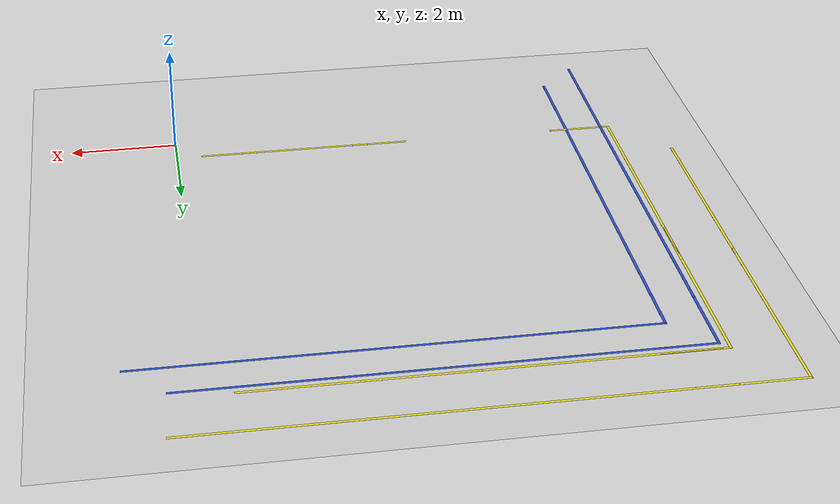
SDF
<sdf version="1.7">
 <world name="default">
  <model name="ground_plane">
   <static>1</static>
   <link name="link">
    <collision name="collision">
     <geometry><plane><normal>0 0 1</normal><size>100 100</size></plane></geometry>
     <surface>
      <contact><collide_bitmask>65535</collide_bitmask></contact>
      <friction><ode><mu>100</mu><mu2>50</mu2></ode></friction>
     </surface>
    </collision>
    <visual name="visual">
     <cast_shadows>0</cast_shadows>
     <geometry><plane><normal>0 0 1</normal><size>100 100</size></plane></geometry>
     <material>
      <script><uri>file://media/materials/scripts/gazebo.material</uri><name>Gazebo/Grey</name></script>
     </material>
    </visual>
   </link>
  </model>
  <model name="line9m_7">
   <link name="link_1">
    <inertial>
     <mass>1</mass>
     <inertia>
      <ixx>0.166667</ixx>
      <ixy>0</ixy>
      <ixz>0</ixz>
      <iyy>0.166667</iyy>
      <iyz>0</iyz>
      <izz>0.166667</izz>
     </inertia>
    </inertial>
    <visual name="visual">
     <geometry><box><size>9 0.05 0.001</size></box></geometry>
     <material>
      <lighting>1</lighting>
      <script><uri>file://media/materials/scripts/gazebo.material</uri><name>Gazebo/Yellow</name></script>
     </material>
    </visual>
    <collision name="collision">
     <geometry><box><size>9 0.05 0.001</size></box></geometry>
     <surface>
      <friction>
       <ode><mu>1</mu><mu2>1</mu2><fdir1>0 0 0</fdir1><slip1>0</slip1><slip2>0</slip2></ode>
       <torsional>
        <coefficient>1</coefficient>
        <patch_radius>0</patch_radius>
        <surface_radius>0</surface_radius>
        <use_patch_radius>1</use_patch_radius>
        <ode><slip>0</slip></ode>
       </torsional>
      </friction>
      <bounce><restitution_coefficient>0</restitution_coefficient><threshold>1e+06</threshold></bounce>
      <contact>
       <collide_without_contact>0</collide_without_contact>
       <collide_without_contact_bitmask>1</collide_without_contact_bitmask>
       <collide_bitmask>1</collide_bitmask>
       <ode>
        <soft_cfm>0</soft_cfm>
        <soft_erp>0.2</soft_erp>
        <kp>1e+13</kp>
        <kd>1</kd>
        <max_vel>0.01</max_vel>
        <min_depth>0</min_depth>
       </ode>
       <bullet>
        <split_impulse>1</split_impulse>
        <split_impulse_penetration_threshold>-0.01</split_impulse_penetration_threshold>
        <soft_cfm>0</soft_cfm>
        <soft_erp>0.2</soft_erp>
        <kp>1e+13</kp>
        <kd>1</kd>
       </bullet>
      </contact>
     </surface>
    </collision>
   </link>
   <static>1</static>
   <pose>-3.87 9.35 0 0 -0 0</pose>
  </model>
  <model name="line4m_0">
   <link name="link_3">
    <inertial>
     <mass>1</mass>
     <inertia>
      <ixx>0.166667</ixx>
      <ixy>0</ixy>
      <ixz>0</ixz>
      <iyy>0.166667</iyy>
      <iyz>0</iyz>
      <izz>0.166667</izz>
     </inertia>
    </inertial>
    <visual name="visual">
     <geometry><box><size>0.05 4 0.001</size></box></geometry>
     <material>
      <lighting>1</lighting>
      <script><uri>file://media/materials/scripts/gazebo.material</uri><name>Gazebo/Yellow</name></script>
     </material>
    </visual>
    <collision name="collision">
     <geometry><box><size>0.05 4 1e-06</size></box></geometry>
     <surface>
      <friction>
       <ode><mu>1</mu><mu2>1</mu2><fdir1>0 0 0</fdir1><slip1>0</slip1><slip2>0</slip2></ode>
       <torsional>
        <coefficient>1</coefficient>
        <patch_radius>0</patch_radius>
        <surface_radius>0</surface_radius>
        <use_patch_radius>1</use_patch_radius>
        <ode><slip>0</slip></ode>
       </torsional>
      </friction>
      <bounce><restitution_coefficient>0</restitution_coefficient><threshold>1e+06</threshold></bounce>
      <contact>
       <collide_without_contact>0</collide_without_contact>
       <collide_without_contact_bitmask>1</collide_without_contact_bitmask>
       <collide_bitmask>1</collide_bitmask>
       <ode>
        <soft_cfm>0</soft_cfm>
        <soft_erp>0.2</soft_erp>
        <kp>1e+13</kp>
        <kd>1</kd>
        <max_vel>0.01</max_vel>
        <min_depth>0</min_depth>
       </ode>
       <bullet>
        <split_impulse>1</split_impulse>
        <split_impulse_penetration_threshold>-0.01</split_impulse_penetration_threshold>
        <soft_cfm>0</soft_cfm>
        <soft_erp>0.2</soft_erp>
        <kp>1e+13</kp>
        <kd>1</kd>
       </bullet>
      </contact>
     </surface>
    </collision>
   </link>
   <static>1</static>
   <pose>-8.55 4.28851 0 0 -0 0</pose>
  </model>
  <model name="line4m_1">
   <link name="link_3">
    <inertial>
     <mass>1</mass>
     <inertia>
      <ixx>0.166667</ixx>
      <ixy>0</ixy>
      <ixz>0</ixz>
      <iyy>0.166667</iyy>
      <iyz>0</iyz>
      <izz>0.166667</izz>
     </inertia>
    </inertial>
    <visual name="visual">
     <geometry><box><size>0.05 4 0.001</size></box></geometry>
     <material>
      <lighting>1</lighting>
      <script><uri>file://media/materials/scripts/gazebo.material</uri><name>Gazebo/Yellow</name></script>
     </material>
    </visual>
    <collision name="collision">
     <geometry><box><size>0.05 4 1e-06</size></box></geometry>
     <surface>
      <friction>
       <ode><mu>1</mu><mu2>1</mu2><fdir1>0 0 0</fdir1><slip1>0</slip1><slip2>0</slip2></ode>
       <torsional>
        <coefficient>1</coefficient>
        <patch_radius>0</patch_radius>
        <surface_radius>0</surface_radius>
        <use_patch_radius>1</use_patch_radius>
        <ode><slip>0</slip></ode>
       </torsional>
      </friction>
      <bounce><restitution_coefficient>0</restitution_coefficient><threshold>1e+06</threshold></bounce>
      <contact>
       <collide_without_contact>0</collide_without_contact>
       <collide_without_contact_bitmask>1</collide_without_contact_bitmask>
       <collide_bitmask>1</collide_bitmask>
       <ode>
        <soft_cfm>0</soft_cfm>
        <soft_erp>0.2</soft_erp>
        <kp>1e+13</kp>
        <kd>1</kd>
        <max_vel>0.01</max_vel>
        <min_depth>0</min_depth>
       </ode>
       <bullet>
        <split_impulse>1</split_impulse>
        <split_impulse_penetration_threshold>-0.01</split_impulse_penetration_threshold>
        <soft_cfm>0</soft_cfm>
        <soft_erp>0.2</soft_erp>
        <kp>1e+13</kp>
        <kd>1</kd>
       </bullet>
      </contact>
     </surface>
    </collision>
   </link>
   <static>1</static>
   <pose>-9.55 3.56802 0 0 -0 0</pose>
  </model>
  <model name="line4m_2">
   <link name="link_3">
    <inertial>
     <mass>1</mass>
     <inertia>
      <ixx>0.166667</ixx>
      <ixy>0</ixy>
      <ixz>0</ixz>
      <iyy>0.166667</iyy>
      <iyz>0</iyz>
      <izz>0.166667</izz>
     </inertia>
    </inertial>
    <visual name="visual">
     <geometry><box><size>0.05 4 0.001</size></box></geometry>
     <material>
      <lighting>1</lighting>
      <script><uri>file://media/materials/scripts/gazebo.material</uri><name>Gazebo/Yellow</name></script>
     </material>
    </visual>
    <collision name="collision">
     <geometry><box><size>0.05 4 1e-06</size></box></geometry>
     <surface>
      <friction>
       <ode><mu>1</mu><mu2>1</mu2><fdir1>0 0 0</fdir1><slip1>0</slip1><slip2>0</slip2></ode>
       <torsional>
        <coefficient>1</coefficient>
        <patch_radius>0</patch_radius>
        <surface_radius>0</surface_radius>
        <use_patch_radius>1</use_patch_radius>
        <ode><slip>0</slip></ode>
       </torsional>
      </friction>
      <bounce><restitution_coefficient>0</restitution_coefficient><threshold>1e+06</threshold></bounce>
      <contact>
       <collide_without_contact>0</collide_without_contact>
       <collide_without_contact_bitmask>1</collide_without_contact_bitmask>
       <collide_bitmask>1</collide_bitmask>
       <ode>
        <soft_cfm>0</soft_cfm>
        <soft_erp>0.2</soft_erp>
        <kp>1e+13</kp>
        <kd>1</kd>
        <max_vel>0.01</max_vel>
        <min_depth>0</min_depth>
       </ode>
       <bullet>
        <split_impulse>1</split_impulse>
        <split_impulse_penetration_threshold>-0.01</split_impulse_penetration_threshold>
        <soft_cfm>0</soft_cfm>
        <soft_erp>0.2</soft_erp>
        <kp>1e+13</kp>
        <kd>1</kd>
       </bullet>
      </contact>
     </surface>
    </collision>
   </link>
   <static>1</static>
   <pose>-9.55 7.37 0 0 -0 0</pose>
  </model>
  <model name="line4m_3">
   <link name="link_3">
    <inertial>
     <mass>1</mass>
     <inertia>
      <ixx>0.166667</ixx>
      <ixy>0</ixy>
      <ixz>0</ixz>
      <iyy>0.166667</iyy>
      <iyz>0</iyz>
      <izz>0.166667</izz>
     </inertia>
    </inertial>
    <visual name="visual">
     <geometry><box><size>0.05 4 0.001</size></box></geometry>
     <material>
      <lighting>1</lighting>
      <script><uri>file://media/materials/scripts/gazebo.material</uri><name>Gazebo/Yellow</name></script>
     </material>
    </visual>
    <collision name="collision">
     <geometry><box><size>0.05 4 1e-06</size></box></geometry>
     <surface>
      <friction>
       <ode><mu>1</mu><mu2>1</mu2><fdir1>0 0 0</fdir1><slip1>0</slip1><slip2>0</slip2></ode>
       <torsional>
        <coefficient>1</coefficient>
        <patch_radius>0</patch_radius>
        <surface_radius>0</surface_radius>
        <use_patch_radius>1</use_patch_radius>
        <ode><slip>0</slip></ode>
       </torsional>
      </friction>
      <bounce><restitution_coefficient>0</restitution_coefficient><threshold>1e+06</threshold></bounce>
      <contact>
       <collide_without_contact>0</collide_without_contact>
       <collide_without_contact_bitmask>1</collide_without_contact_bitmask>
       <collide_bitmask>1</collide_bitmask>
       <ode>
        <soft_cfm>0</soft_cfm>
        <soft_erp>0.2</soft_erp>
        <kp>1e+13</kp>
        <kd>1</kd>
        <max_vel>0.01</max_vel>
        <min_depth>0</min_depth>
       </ode>
       <bullet>
        <split_impulse>1</split_impulse>
        <split_impulse_penetration_threshold>-0.01</split_impulse_penetration_threshold>
        <soft_cfm>0</soft_cfm>
        <soft_erp>0.2</soft_erp>
        <kp>1e+13</kp>
        <kd>1</kd>
       </bullet>
      </contact>
     </surface>
    </collision>
   </link>
   <static>1</static>
   <pose>-8.55 6.375 0 0 -0 0</pose>
  </model>
  <model name="line2m_0">
   <link name="link_0">
    <inertial>
     <mass>1</mass>
     <inertia>
      <ixx>0.166667</ixx>
      <ixy>0</ixy>
      <ixz>0</ixz>
      <iyy>0.166667</iyy>
      <iyz>0</iyz>
      <izz>0.166667</izz>
     </inertia>
    </inertial>
    <visual name="visual">
     <geometry><box><size>2 0.05 0.001</size></box></geometry>
     <material>
      <lighting>1</lighting>
      <script><uri>file://media/materials/scripts/gazebo.material</uri><name>Gazebo/Yellow</name></script>
     </material>
    </visual>
    <collision name="collision">
     <geometry><box><size>2 0.05 1e-05</size></box></geometry>
     <surface>
      <friction>
       <ode><mu>1</mu><mu2>1</mu2><fdir1>0 0 0</fdir1><slip1>0</slip1><slip2>0</slip2></ode>
       <torsional>
        <coefficient>1</coefficient>
        <patch_radius>0</patch_radius>
        <surface_radius>0</surface_radius>
        <use_patch_radius>1</use_patch_radius>
        <ode><slip>0</slip></ode>
       </torsional>
      </friction>
      <bounce><restitution_coefficient>0</restitution_coefficient><threshold>1e+06</threshold></bounce>
      <contact>
       <collide_without_contact>0</collide_without_contact>
       <collide_without_contact_bitmask>1</collide_without_contact_bitmask>
       <collide_bitmask>1</collide_bitmask>
       <ode>
        <soft_cfm>0</soft_cfm>
        <soft_erp>0.2</soft_erp>
        <kp>1e+13</kp>
        <kd>1</kd>
        <max_vel>0.01</max_vel>
        <min_depth>0</min_depth>
       </ode>
       <bullet>
        <split_impulse>1</split_impulse>
        <split_impulse_penetration_threshold>-0.01</split_impulse_penetration_threshold>
        <soft_cfm>0</soft_cfm>
        <soft_erp>0.2</soft_erp>
        <kp>1e+13</kp>
        <kd>1</kd>
       </bullet>
      </contact>
     </surface>
    </collision>
   </link>
   <static>1</static>
   <pose>-8.575 9.35 0 0 -0 0</pose>
  </model>
  <model name="line9m_11_clone">
   <link name="link_1">
    <inertial>
     <mass>1</mass>
     <inertia>
      <ixx>0.166667</ixx>
      <ixy>0</ixy>
      <ixz>0</ixz>
      <iyy>0.166667</iyy>
      <iyz>0</iyz>
      <izz>0.166667</izz>
     </inertia>
    </inertial>
    <visual name="visual">
     <geometry><box><size>9 0.05 0.001</size></box></geometry>
     <material>
      <lighting>1</lighting>
      <script><uri>file://media/materials/scripts/gazebo.material</uri><name>Gazebo/Blue</name></script>
     </material>
    </visual>
    <collision name="collision">
     <geometry><box><size>9 0.05 0.001</size></box></geometry>
     <surface>
      <friction>
       <ode><mu>1</mu><mu2>1</mu2><fdir1>0 0 0</fdir1><slip1>0</slip1><slip2>0</slip2></ode>
       <torsional>
        <coefficient>1</coefficient>
        <patch_radius>0</patch_radius>
        <surface_radius>0</surface_radius>
        <use_patch_radius>1</use_patch_radius>
        <ode><slip>0</slip></ode>
       </torsional>
      </friction>
      <bounce><restitution_coefficient>0</restitution_coefficient><threshold>1e+06</threshold></bounce>
      <contact>
       <collide_without_contact>0</collide_without_contact>
       <collide_without_contact_bitmask>1</collide_without_contact_bitmask>
       <collide_bitmask>1</collide_bitmask>
       <ode>
        <soft_cfm>0</soft_cfm>
        <soft_erp>0.2</soft_erp>
        <kp>1e+13</kp>
        <kd>1</kd>
        <max_vel>0.01</max_vel>
        <min_depth>0</min_depth>
       </ode>
       <bullet>
        <split_impulse>1</split_impulse>
        <split_impulse_penetration_threshold>-0.01</split_impulse_penetration_threshold>
        <soft_cfm>0</soft_cfm>
        <soft_erp>0.2</soft_erp>
        <kp>1e+13</kp>
        <kd>1</kd>
       </bullet>
      </contact>
     </surface>
    </collision>
   </link>
   <static>1</static>
   <pose>-3.92317 8.2 0 0 -0 0</pose>
  </model>
  <model name="line160cm">
   <link name="link_1">
    <inertial>
     <mass>1</mass>
     <inertia>
      <ixx>0.166667</ixx>
      <ixy>0</ixy>
      <ixz>0</ixz>
      <iyy>0.166667</iyy>
      <iyz>0</iyz>
      <izz>0.166667</izz>
     </inertia>
    </inertial>
    <visual name="visual">
     <geometry><box><size>1.6 0.05 0.001</size></box></geometry>
     <material>
      <script><uri>file://media/materials/scripts/gazebo.material</uri><name>Gazebo/Blue</name></script>
     </material>
    </visual>
    <collision name="collision">
     <geometry><box><size>1.6 0.05 1e-05</size></box></geometry>
     <surface>
      <friction>
       <ode><mu>1</mu><mu2>1</mu2><fdir1>0 0 0</fdir1><slip1>0</slip1><slip2>0</slip2></ode>
       <torsional>
        <coefficient>1</coefficient>
        <patch_radius>0</patch_radius>
        <surface_radius>0</surface_radius>
        <use_patch_radius>1</use_patch_radius>
        <ode><slip>0</slip></ode>
       </torsional>
      </friction>
      <bounce><restitution_coefficient>0</restitution_coefficient><threshold>1e+06</threshold></bounce>
      <contact>
       <collide_without_contact>0</collide_without_contact>
       <collide_without_contact_bitmask>1</collide_without_contact_bitmask>
       <collide_bitmask>1</collide_bitmask>
       <ode>
        <soft_cfm>0</soft_cfm>
        <soft_erp>0.2</soft_erp>
        <kp>1e+13</kp>
        <kd>1</kd>
        <max_vel>0.01</max_vel>
        <min_depth>0</min_depth>
       </ode>
       <bullet>
        <split_impulse>1</split_impulse>
        <split_impulse_penetration_threshold>-0.01</split_impulse_penetration_threshold>
        <soft_cfm>0</soft_cfm>
        <soft_erp>0.2</soft_erp>
        <kp>1e+13</kp>
        <kd>1</kd>
       </bullet>
      </contact>
     </surface>
    </collision>
   </link>
   <static>1</static>
   <pose>-8.4 7.4248 0 0 -0 1.571</pose>
  </model>
  <model name="line9m_12">
   <link name="link_1">
    <inertial>
     <mass>1</mass>
     <inertia>
      <ixx>0.166667</ixx>
      <ixy>0</ixy>
      <ixz>0</ixz>
      <iyy>0.166667</iyy>
      <iyz>0</iyz>
      <izz>0.166667</izz>
     </inertia>
    </inertial>
    <visual name="visual">
     <geometry><box><size>9 0.05 0.001</size></box></geometry>
     <material>
      <lighting>1</lighting>
      <script><uri>file://media/materials/scripts/gazebo.material</uri><name>Gazebo/Blue</name></script>
     </material>
    </visual>
    <collision name="collision">
     <geometry><box><size>9 0.05 0.001</size></box></geometry>
     <surface>
      <friction>
       <ode><mu>1</mu><mu2>1</mu2><fdir1>0 0 0</fdir1><slip1>0</slip1><slip2>0</slip2></ode>
       <torsional>
        <coefficient>1</coefficient>
        <patch_radius>0</patch_radius>
        <surface_radius>0</surface_radius>
        <use_patch_radius>1</use_patch_radius>
        <ode><slip>0</slip></ode>
       </torsional>
      </friction>
      <bounce><restitution_coefficient>0</restitution_coefficient><threshold>1e+06</threshold></bounce>
      <contact>
       <collide_without_contact>0</collide_without_contact>
       <collide_without_contact_bitmask>1</collide_without_contact_bitmask>
       <collide_bitmask>1</collide_bitmask>
       <ode>
        <soft_cfm>0</soft_cfm>
        <soft_erp>0.2</soft_erp>
        <kp>1e+13</kp>
        <kd>1</kd>
        <max_vel>0.01</max_vel>
        <min_depth>0</min_depth>
       </ode>
       <bullet>
        <split_impulse>1</split_impulse>
        <split_impulse_penetration_threshold>-0.01</split_impulse_penetration_threshold>
        <soft_cfm>0</soft_cfm>
        <soft_erp>0.2</soft_erp>
        <kp>1e+13</kp>
        <kd>1</kd>
       </bullet>
      </contact>
     </surface>
    </collision>
   </link>
   <static>1</static>
   <pose>-3.2268 7.5 0 0 -0 0</pose>
  </model>
  <model name="line9m_13">
   <link name="link_1">
    <inertial>
     <mass>1</mass>
     <inertia>
      <ixx>0.166667</ixx>
      <ixy>0</ixy>
      <ixz>0</ixz>
      <iyy>0.166667</iyy>
      <iyz>0</iyz>
      <izz>0.166667</izz>
     </inertia>
    </inertial>
    <visual name="visual">
     <geometry><box><size>9 0.05 0.001</size></box></geometry>
     <material>
      <lighting>1</lighting>
      <script><uri>file://media/materials/scripts/gazebo.material</uri><name>Gazebo/Blue</name></script>
     </material>
    </visual>
    <collision name="collision">
     <geometry><box><size>9 0.05 0.001</size></box></geometry>
     <surface>
      <friction>
       <ode><mu>1</mu><mu2>1</mu2><fdir1>0 0 0</fdir1><slip1>0</slip1><slip2>0</slip2></ode>
       <torsional>
        <coefficient>1</coefficient>
        <patch_radius>0</patch_radius>
        <surface_radius>0</surface_radius>
        <use_patch_radius>1</use_patch_radius>
        <ode><slip>0</slip></ode>
       </torsional>
      </friction>
      <bounce><restitution_coefficient>0</restitution_coefficient><threshold>1e+06</threshold></bounce>
      <contact>
       <collide_without_contact>0</collide_without_contact>
       <collide_without_contact_bitmask>1</collide_without_contact_bitmask>
       <collide_bitmask>1</collide_bitmask>
       <ode>
        <soft_cfm>0</soft_cfm>
        <soft_erp>0.2</soft_erp>
        <kp>1e+13</kp>
        <kd>1</kd>
        <max_vel>0.01</max_vel>
        <min_depth>0</min_depth>
       </ode>
       <bullet>
        <split_impulse>1</split_impulse>
        <split_impulse_penetration_threshold>-0.01</split_impulse_penetration_threshold>
        <soft_cfm>0</soft_cfm>
        <soft_erp>0.2</soft_erp>
        <kp>1e+13</kp>
        <kd>1</kd>
       </bullet>
      </contact>
     </surface>
    </collision>
   </link>
   <static>1</static>
   <pose>-7.7 3.025 0 0 -0 1.571</pose>
  </model>
  <model name="line9m_15">
   <link name="link_1">
    <inertial>
     <mass>1</mass>
     <inertia>
      <ixx>0.166667</ixx>
      <ixy>0</ixy>
      <ixz>0</ixz>
      <iyy>0.166667</iyy>
      <iyz>0</iyz>
      <izz>0.166667</izz>
     </inertia>
    </inertial>
    <visual name="visual">
     <geometry><box><size>9 0.05 0.001</size></box></geometry>
     <material>
      <lighting>1</lighting>
      <script><uri>file://media/materials/scripts/gazebo.material</uri><name>Gazebo/Blue</name></script>
     </material>
    </visual>
    <collision name="collision">
     <geometry><box><size>9 0.05 0.001</size></box></geometry>
     <surface>
      <friction>
       <ode><mu>1</mu><mu2>1</mu2><fdir1>0 0 0</fdir1><slip1>0</slip1><slip2>0</slip2></ode>
       <torsional>
        <coefficient>1</coefficient>
        <patch_radius>0</patch_radius>
        <surface_radius>0</surface_radius>
        <use_patch_radius>1</use_patch_radius>
        <ode><slip>0</slip></ode>
       </torsional>
      </friction>
      <bounce><restitution_coefficient>0</restitution_coefficient><threshold>1e+06</threshold></bounce>
      <contact>
       <collide_without_contact>0</collide_without_contact>
       <collide_without_contact_bitmask>1</collide_without_contact_bitmask>
       <collide_bitmask>1</collide_bitmask>
       <ode>
        <soft_cfm>0</soft_cfm>
        <soft_erp>0.2</soft_erp>
        <kp>1e+13</kp>
        <kd>1</kd>
        <max_vel>0.01</max_vel>
        <min_depth>0</min_depth>
       </ode>
       <bullet>
        <split_impulse>1</split_impulse>
        <split_impulse_penetration_threshold>-0.01</split_impulse_penetration_threshold>
        <soft_cfm>0</soft_cfm>
        <soft_erp>0.2</soft_erp>
        <kp>1e+13</kp>
        <kd>1</kd>
       </bullet>
      </contact>
     </surface>
    </collision>
   </link>
   <static>1</static>
   <pose>-8.40007 2.31121 0 0 -0 1.571</pose>
  </model>
  <model name="line4m_26">
   <link name="link_3">
    <inertial>
     <mass>1</mass>
     <inertia>
      <ixx>0.166667</ixx>
      <ixy>0</ixy>
      <ixz>0</ixz>
      <iyy>0.166667</iyy>
      <iyz>0</iyz>
      <izz>0.166667</izz>
     </inertia>
    </inertial>
    <visual name="visual">
     <geometry><box><size>0.05 4 0.001</size></box></geometry>
     <material>
      <lighting>1</lighting>
      <script><uri>file://media/materials/scripts/gazebo.material</uri><name>Gazebo/Yellow</name></script>
     </material>
    </visual>
    <collision name="collision">
     <geometry><box><size>0.05 4 1e-06</size></box></geometry>
     <surface>
      <friction>
       <ode><mu>1</mu><mu2>1</mu2><fdir1>0 0 0</fdir1><slip1>0</slip1><slip2>0</slip2></ode>
       <torsional>
        <coefficient>1</coefficient>
        <patch_radius>0</patch_radius>
        <surface_radius>0</surface_radius>
        <use_patch_radius>1</use_patch_radius>
        <ode><slip>0</slip></ode>
       </torsional>
      </friction>
      <bounce><restitution_coefficient>0</restitution_coefficient><threshold>1e+06</threshold></bounce>
      <contact>
       <collide_without_contact>0</collide_without_contact>
       <collide_without_contact_bitmask>1</collide_without_contact_bitmask>
       <collide_bitmask>1</collide_bitmask>
       <ode>
        <soft_cfm>0</soft_cfm>
        <soft_erp>0.2</soft_erp>
        <kp>1e+13</kp>
        <kd>1</kd>
        <max_vel>0.01</max_vel>
        <min_depth>0</min_depth>
       </ode>
       <bullet>
        <split_impulse>1</split_impulse>
        <split_impulse_penetration_threshold>-0.01</split_impulse_penetration_threshold>
        <soft_cfm>0</soft_cfm>
        <soft_erp>0.2</soft_erp>
        <kp>1e+13</kp>
        <kd>1</kd>
       </bullet>
      </contact>
     </surface>
    </collision>
   </link>
   <static>1</static>
   <pose>-6.42122 8.34955 0 0 -0 1.571</pose>
  </model>
  <model name="line120cm_6">
   <link name="link_1">
    <inertial>
     <mass>1</mass>
     <inertia>
      <ixx>0.166667</ixx>
      <ixy>0</ixy>
      <ixz>0</ixz>
      <iyy>0.166667</iyy>
      <iyz>0</iyz>
      <izz>0.166667</izz>
     </inertia>
    </inertial>
    <visual name="visual">
     <geometry><box><size>1.2 0.05 0.001</size></box></geometry>
     <material>
      <script><uri>file://media/materials/scripts/gazebo.material</uri><name>Gazebo/Yellow</name></script>
     </material>
    </visual>
    <collision name="collision">
     <geometry><box><size>1.2 0.05 1e-05</size></box></geometry>
     <surface>
      <friction>
       <ode><mu>1</mu><mu2>1</mu2><fdir1>0 0 0</fdir1><slip1>0</slip1><slip2>0</slip2></ode>
       <torsional>
        <coefficient>1</coefficient>
        <patch_radius>0</patch_radius>
        <surface_radius>0</surface_radius>
        <use_patch_radius>1</use_patch_radius>
        <ode><slip>0</slip></ode>
       </torsional>
      </friction>
      <bounce><restitution_coefficient>0</restitution_coefficient><threshold>1e+06</threshold></bounce>
      <contact>
       <collide_without_contact>0</collide_without_contact>
       <collide_without_contact_bitmask>1</collide_without_contact_bitmask>
       <collide_bitmask>1</collide_bitmask>
       <ode>
        <soft_cfm>0</soft_cfm>
        <soft_erp>0.2</soft_erp>
        <kp>1e+13</kp>
        <kd>1</kd>
        <max_vel>0.01</max_vel>
        <min_depth>0</min_depth>
       </ode>
       <bullet>
        <split_impulse>1</split_impulse>
        <split_impulse_penetration_threshold>-0.01</split_impulse_penetration_threshold>
        <soft_cfm>0</soft_cfm>
        <soft_erp>0.2</soft_erp>
        <kp>1e+13</kp>
        <kd>1</kd>
       </bullet>
      </contact>
     </surface>
    </collision>
   </link>
   <static>1</static>
   <pose>-7.96761 8.35 0 0 -0 0</pose>
  </model>
  <model name="line4m_17_clone">
   <link name="link_3">
    <inertial>
     <mass>1</mass>
     <inertia>
      <ixx>0.166667</ixx>
      <ixy>0</ixy>
      <ixz>0</ixz>
      <iyy>0.166667</iyy>
      <iyz>0</iyz>
      <izz>0.166667</izz>
     </inertia>
    </inertial>
    <visual name="visual">
     <geometry><box><size>0.05 4 0.001</size></box></geometry>
     <material>
      <lighting>1</lighting>
      <script><uri>file://media/materials/scripts/gazebo.material</uri><name>Gazebo/Yellow</name></script>
     </material>
    </visual>
    <collision name="collision">
     <geometry><box><size>0.05 4 1e-06</size></box></geometry>
     <surface>
      <friction>
       <ode><mu>1</mu><mu2>1</mu2><fdir1>0 0 0</fdir1><slip1>0</slip1><slip2>0</slip2></ode>
       <torsional>
        <coefficient>1</coefficient>
        <patch_radius>0</patch_radius>
        <surface_radius>0</surface_radius>
        <use_patch_radius>1</use_patch_radius>
        <ode><slip>0</slip></ode>
       </torsional>
      </friction>
      <bounce><restitution_coefficient>0</restitution_coefficient><threshold>1e+06</threshold></bounce>
      <contact>
       <collide_without_contact>0</collide_without_contact>
       <collide_without_contact_bitmask>1</collide_without_contact_bitmask>
       <collide_bitmask>1</collide_bitmask>
       <ode>
        <soft_cfm>0</soft_cfm>
        <soft_erp>0.2</soft_erp>
        <kp>1e+13</kp>
        <kd>1</kd>
        <max_vel>0.01</max_vel>
        <min_depth>0</min_depth>
       </ode>
       <bullet>
        <split_impulse>1</split_impulse>
        <split_impulse_penetration_threshold>-0.01</split_impulse_penetration_threshold>
        <soft_cfm>0</soft_cfm>
        <soft_erp>0.2</soft_erp>
        <kp>1e+13</kp>
        <kd>1</kd>
       </bullet>
      </contact>
     </surface>
    </collision>
   </link>
   <static>1</static>
   <pose>-2.4726 0.5 0 0 -0 1.571</pose>
  </model>
  <model name="line120cm_13">
   <link name="link_1">
    <inertial>
     <mass>1</mass>
     <inertia>
      <ixx>0.166667</ixx>
      <ixy>0</ixy>
      <ixz>0</ixz>
      <iyy>0.166667</iyy>
      <iyz>0</iyz>
      <izz>0.166667</izz>
     </inertia>
    </inertial>
    <visual name="visual">
     <geometry><box><size>1.2 0.05 0.001</size></box></geometry>
     <material>
      <script><uri>file://media/materials/scripts/gazebo.material</uri><name>Gazebo/Yellow</name></script>
     </material>
    </visual>
    <collision name="collision">
     <geometry><box><size>1.2 0.05 1e-05</size></box></geometry>
     <surface>
      <friction>
       <ode><mu>1</mu><mu2>1</mu2><fdir1>0 0 0</fdir1><slip1>0</slip1><slip2>0</slip2></ode>
       <torsional>
        <coefficient>1</coefficient>
        <patch_radius>0</patch_radius>
        <surface_radius>0</surface_radius>
        <use_patch_radius>1</use_patch_radius>
        <ode><slip>0</slip></ode>
       </torsional>
      </friction>
      <bounce><restitution_coefficient>0</restitution_coefficient><threshold>1e+06</threshold></bounce>
      <contact>
       <collide_without_contact>0</collide_without_contact>
       <collide_without_contact_bitmask>1</collide_without_contact_bitmask>
       <collide_bitmask>1</collide_bitmask>
       <ode>
        <soft_cfm>0</soft_cfm>
        <soft_erp>0.2</soft_erp>
        <kp>1e+13</kp>
        <kd>1</kd>
        <max_vel>0.01</max_vel>
        <min_depth>0</min_depth>
       </ode>
       <bullet>
        <split_impulse>1</split_impulse>
        <split_impulse_penetration_threshold>-0.01</split_impulse_penetration_threshold>
        <soft_cfm>0</soft_cfm>
        <soft_erp>0.2</soft_erp>
        <kp>1e+13</kp>
        <kd>1</kd>
       </bullet>
      </contact>
     </surface>
    </collision>
   </link>
   <static>1</static>
   <pose>-7.97345 0.5 0 0 -0 0</pose>
  </model>
  <model name="line4m_33">
   <link name="link_3">
    <inertial>
     <mass>1</mass>
     <inertia>
      <ixx>0.166667</ixx>
      <ixy>0</ixy>
      <ixz>0</ixz>
      <iyy>0.166667</iyy>
      <iyz>0</iyz>
      <izz>0.166667</izz>
     </inertia>
    </inertial>
    <visual name="visual">
     <geometry><box><size>0.05 4 0.001</size></box></geometry>
     <material>
      <lighting>1</lighting>
      <script><uri>file://media/materials/scripts/gazebo.material</uri><name>Gazebo/Yellow</name></script>
     </material>
    </visual>
    <collision name="collision">
     <geometry><box><size>0.05 4 1e-06</size></box></geometry>
     <surface>
      <friction>
       <ode><mu>1</mu><mu2>1</mu2><fdir1>0 0 0</fdir1><slip1>0</slip1><slip2>0</slip2></ode>
       <torsional>
        <coefficient>1</coefficient>
        <patch_radius>0</patch_radius>
        <surface_radius>0</surface_radius>
        <use_patch_radius>1</use_patch_radius>
        <ode><slip>0</slip></ode>
       </torsional>
      </friction>
      <bounce><restitution_coefficient>0</restitution_coefficient><threshold>1e+06</threshold></bounce>
      <contact>
       <collide_without_contact>0</collide_without_contact>
       <collide_without_contact_bitmask>1</collide_without_contact_bitmask>
       <collide_bitmask>1</collide_bitmask>
       <ode>
        <soft_cfm>0</soft_cfm>
        <soft_erp>0.2</soft_erp>
        <kp>1e+13</kp>
        <kd>1</kd>
        <max_vel>0.01</max_vel>
        <min_depth>0</min_depth>
       </ode>
       <bullet>
        <split_impulse>1</split_impulse>
        <split_impulse_penetration_threshold>-0.01</split_impulse_penetration_threshold>
        <soft_cfm>0</soft_cfm>
        <soft_erp>0.2</soft_erp>
        <kp>1e+13</kp>
        <kd>1</kd>
       </bullet>
      </contact>
     </surface>
    </collision>
   </link>
   <static>1</static>
   <pose>-8.55 2.48846 0 0 -0 0</pose>
  </model>
  <model name="line2m_6">
   <link name="link_0">
    <inertial>
     <mass>1</mass>
     <inertia>
      <ixx>0.166667</ixx>
      <ixy>0</ixy>
      <ixz>0</ixz>
      <iyy>0.166667</iyy>
      <iyz>0</iyz>
      <izz>0.166667</izz>
     </inertia>
    </inertial>
    <visual name="visual">
     <geometry><box><size>2 0.05 0.001</size></box></geometry>
     <material>
      <lighting>1</lighting>
      <script><uri>file://media/materials/scripts/gazebo.material</uri><name>Gazebo/Yellow</name></script>
     </material>
    </visual>
    <collision name="collision">
     <geometry><box><size>2 0.05 1e-05</size></box></geometry>
     <surface>
      <friction>
       <ode><mu>1</mu><mu2>1</mu2><fdir1>0 0 0</fdir1><slip1>0</slip1><slip2>0</slip2></ode>
       <torsional>
        <coefficient>1</coefficient>
        <patch_radius>0</patch_radius>
        <surface_radius>0</surface_radius>
        <use_patch_radius>1</use_patch_radius>
        <ode><slip>0</slip></ode>
       </torsional>
      </friction>
      <bounce><restitution_coefficient>0</restitution_coefficient><threshold>1e+06</threshold></bounce>
      <contact>
       <collide_without_contact>0</collide_without_contact>
       <collide_without_contact_bitmask>1</collide_without_contact_bitmask>
       <collide_bitmask>1</collide_bitmask>
       <ode>
        <soft_cfm>0</soft_cfm>
        <soft_erp>0.2</soft_erp>
        <kp>1e+13</kp>
        <kd>1</kd>
        <max_vel>0.01</max_vel>
        <min_depth>0</min_depth>
       </ode>
       <bullet>
        <split_impulse>1</split_impulse>
        <split_impulse_penetration_threshold>-0.01</split_impulse_penetration_threshold>
        <soft_cfm>0</soft_cfm>
        <soft_erp>0.2</soft_erp>
        <kp>1e+13</kp>
        <kd>1</kd>
       </bullet>
      </contact>
     </surface>
    </collision>
   </link>
   <static>1</static>
   <pose>-1.47826 8.35 0 0 -0 0</pose>
  </model>
  <model name="line2m_7">
   <link name="link_0">
    <inertial>
     <mass>1</mass>
     <inertia>
      <ixx>0.166667</ixx>
      <ixy>0</ixy>
      <ixz>0</ixz>
      <iyy>0.166667</iyy>
      <iyz>0</iyz>
      <izz>0.166667</izz>
     </inertia>
    </inertial>
    <visual name="visual">
     <geometry><box><size>2 0.05 0.001</size></box></geometry>
     <material>
      <lighting>1</lighting>
      <script><uri>file://media/materials/scripts/gazebo.material</uri><name>Gazebo/Yellow</name></script>
     </material>
    </visual>
    <collision name="collision">
     <geometry><box><size>2 0.05 1e-05</size></box></geometry>
     <surface>
      <friction>
       <ode><mu>1</mu><mu2>1</mu2><fdir1>0 0 0</fdir1><slip1>0</slip1><slip2>0</slip2></ode>
       <torsional>
        <coefficient>1</coefficient>
        <patch_radius>0</patch_radius>
        <surface_radius>0</surface_radius>
        <use_patch_radius>1</use_patch_radius>
        <ode><slip>0</slip></ode>
       </torsional>
      </friction>
      <bounce><restitution_coefficient>0</restitution_coefficient><threshold>1e+06</threshold></bounce>
      <contact>
       <collide_without_contact>0</collide_without_contact>
       <collide_without_contact_bitmask>1</collide_without_contact_bitmask>
       <collide_bitmask>1</collide_bitmask>
       <ode>
        <soft_cfm>0</soft_cfm>
        <soft_erp>0.2</soft_erp>
        <kp>1e+13</kp>
        <kd>1</kd>
        <max_vel>0.01</max_vel>
        <min_depth>0</min_depth>
       </ode>
       <bullet>
        <split_impulse>1</split_impulse>
        <split_impulse_penetration_threshold>-0.01</split_impulse_penetration_threshold>
        <soft_cfm>0</soft_cfm>
        <soft_erp>0.2</soft_erp>
        <kp>1e+13</kp>
        <kd>1</kd>
       </bullet>
      </contact>
     </surface>
    </collision>
   </link>
   <static>1</static>
   <pose>-3.44427 8.35 0 0 -0 0</pose>
  </model>
 </world>
</sdf>
